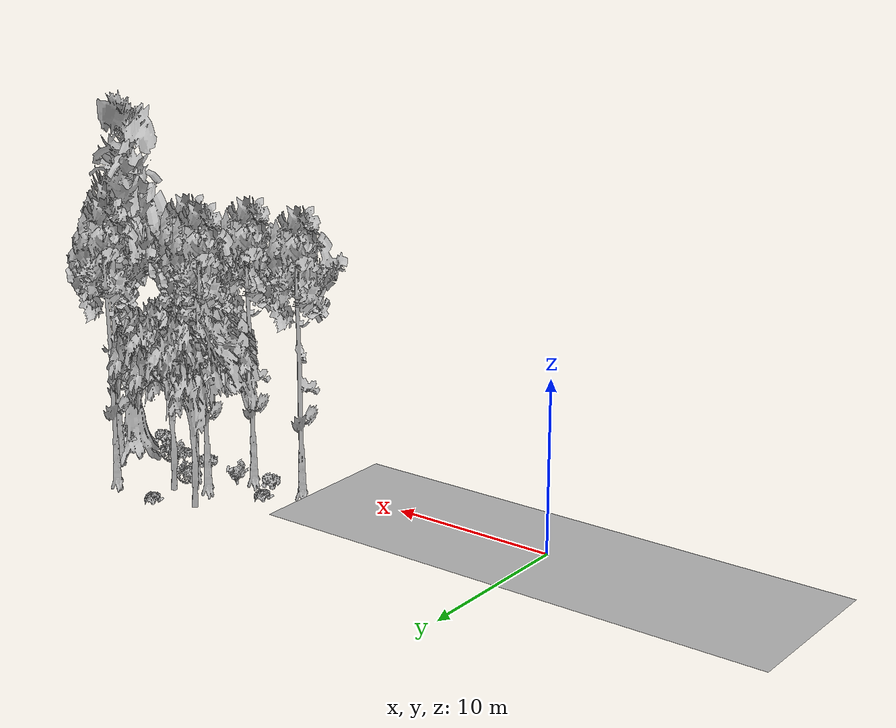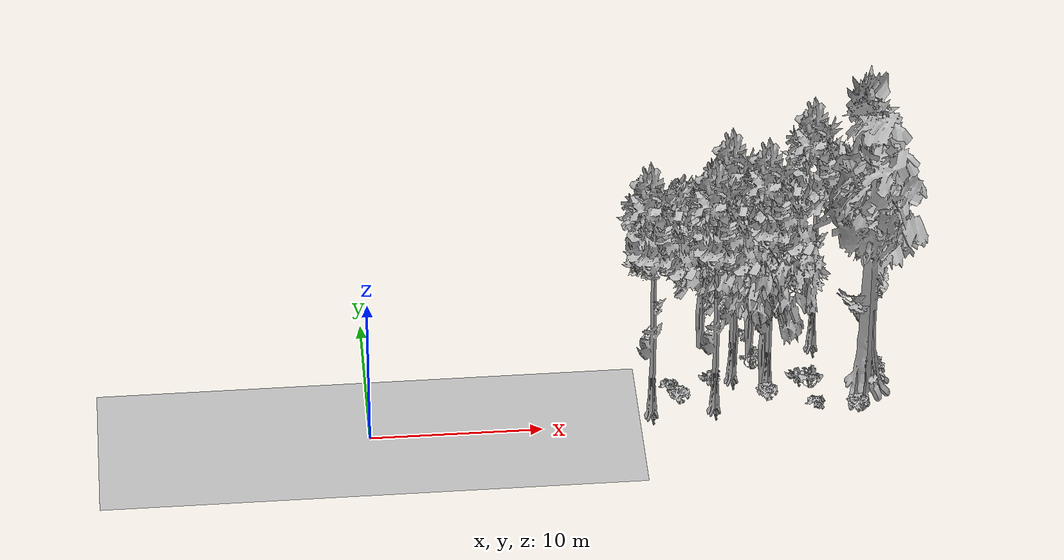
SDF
<sdf version="1.7">
 <world name="default">
  <model name="ground_plane">
   <static>1</static>
   <link name="link">
    <collision name="collision">
     <geometry><plane><normal>0 0 1</normal><size>100 100</size></plane></geometry>
     <surface><contact><ode><min_depth>0.01</min_depth><max_vel>0</max_vel></ode></contact></surface>
    </collision>
    <visual name="grass">
     <cast_shadows>0</cast_shadows>
     <geometry>
      <mesh>
       <scale>0.5814285714285714 0.18142857142857144 0.1</scale>
       <uri>file://grass_plane/meshes/grass_plane.dae</uri>
      </mesh>
     </geometry>
    </visual>
   </link>
  </model>
  <model name="Tree 25">
   <static>1</static>
   <pose>22.55077985762439 5.404610662665622 0 1.57079 -0 0</pose>
   <link name="link">
    <collision name="collision">
     <geometry><mesh><scale>3.5 5 3.5</scale><uri>model://tree_2/meshes/tree_2.obj</uri></mesh></geometry>
    </collision>
    <visual name="visual">
     <geometry><mesh><scale>3.5 5 3.5</scale><uri>model://tree_2/meshes/tree_2.obj</uri></mesh></geometry>
    </visual>
   </link>
  </model>
  <model name="Tree 134">
   <static>1</static>
   <pose>29.042151158408984 2.170299453548065 0 1.57079 -0 0</pose>
   <link name="link">
    <collision name="collision">
     <geometry><mesh><scale>3.5 5 3.5</scale><uri>model://tree_4/meshes/tree_4.obj</uri></mesh></geometry>
    </collision>
    <visual name="visual">
     <geometry><mesh><scale>3.5 5 3.5</scale><uri>model://tree_4/meshes/tree_4.obj</uri></mesh></geometry>
    </visual>
   </link>
  </model>
  <model name="Tree 139">
   <static>1</static>
   <pose>23.053420853317434 3.071436323676455 0 1.57079 -0 0</pose>
   <link name="link">
    <collision name="collision">
     <geometry><mesh><scale>3.5 5 3.5</scale><uri>model://tree_2/meshes/tree_2.obj</uri></mesh></geometry>
    </collision>
    <visual name="visual">
     <geometry><mesh><scale>3.5 5 3.5</scale><uri>model://tree_2/meshes/tree_2.obj</uri></mesh></geometry>
    </visual>
   </link>
  </model>
  <model name="Tree 196">
   <static>1</static>
   <pose>29.243679461710073 3.341687751369747 0 1.57079 -0 0</pose>
   <link name="link">
    <collision name="collision">
     <geometry><mesh><scale>3.5 5 3.5</scale><uri>model://tree_9/meshes/tree_9.obj</uri></mesh></geometry>
    </collision>
    <visual name="visual">
     <geometry><mesh><scale>3.5 5 3.5</scale><uri>model://tree_9/meshes/tree_9.obj</uri></mesh></geometry>
    </visual>
   </link>
  </model>
  <model name="Tree 197">
   <static>1</static>
   <pose>16.45932849056699 1.1250307889087736 0 1.57079 -0 0</pose>
   <link name="link">
    <collision name="collision">
     <geometry><mesh><scale>3.5 5 3.5</scale><uri>model://tree_9/meshes/tree_9.obj</uri></mesh></geometry>
    </collision>
    <visual name="visual">
     <geometry><mesh><scale>3.5 5 3.5</scale><uri>model://tree_9/meshes/tree_9.obj</uri></mesh></geometry>
    </visual>
   </link>
  </model>
  <model name="Tree 206">
   <static>1</static>
   <pose>21.550527114345527 4.646487616851701 0 1.57079 -0 0</pose>
   <link name="link">
    <collision name="collision">
     <geometry><mesh><scale>3.5 5 3.5</scale><uri>model://tree_2/meshes/tree_2.obj</uri></mesh></geometry>
    </collision>
    <visual name="visual">
     <geometry><mesh><scale>3.5 5 3.5</scale><uri>model://tree_2/meshes/tree_2.obj</uri></mesh></geometry>
    </visual>
   </link>
  </model>
  <model name="Tree 224">
   <static>1</static>
   <pose>20.13026242590155 1.2398484800695435 0 1.57079 -0 0</pose>
   <link name="link">
    <collision name="collision">
     <geometry><mesh><scale>3.5 5 3.5</scale><uri>model://tree_9/meshes/tree_9.obj</uri></mesh></geometry>
    </collision>
    <visual name="visual">
     <geometry><mesh><scale>3.5 5 3.5</scale><uri>model://tree_9/meshes/tree_9.obj</uri></mesh></geometry>
    </visual>
   </link>
  </model>
  <model name="Tree 230">
   <static>1</static>
   <pose>26.452710162966667 6.327860844404736 0 1.57079 -0 0</pose>
   <link name="link">
    <collision name="collision">
     <geometry><mesh><scale>3.5 5 3.5</scale><uri>model://tree_9/meshes/tree_9.obj</uri></mesh></geometry>
    </collision>
    <visual name="visual">
     <geometry><mesh><scale>3.5 5 3.5</scale><uri>model://tree_9/meshes/tree_9.obj</uri></mesh></geometry>
    </visual>
   </link>
  </model>
  <model name="Tree 266">
   <static>1</static>
   <pose>21.431868518218863 3.8346531745085883 0 1.57079 -0 0</pose>
   <link name="link">
    <collision name="collision">
     <geometry><mesh><scale>3.5 5 3.5</scale><uri>model://tree_9/meshes/tree_9.obj</uri></mesh></geometry>
    </collision>
    <visual name="visual">
     <geometry><mesh><scale>3.5 5 3.5</scale><uri>model://tree_9/meshes/tree_9.obj</uri></mesh></geometry>
    </visual>
   </link>
  </model>
  <model name="Tree 352">
   <static>1</static>
   <pose>23.393078878487785 2.79384476644859 0 1.57079 -0 0</pose>
   <link name="link">
    <collision name="collision">
     <geometry><mesh><scale>3.5 5 3.5</scale><uri>model://tree_9/meshes/tree_9.obj</uri></mesh></geometry>
    </collision>
    <visual name="visual">
     <geometry><mesh><scale>3.5 5 3.5</scale><uri>model://tree_9/meshes/tree_9.obj</uri></mesh></geometry>
    </visual>
   </link>
  </model>
  <model name="Tree 395">
   <static>1</static>
   <pose>19.78388393962784 6.5391574328216535 0 1.57079 -0 0</pose>
   <link name="link">
    <collision name="collision">
     <geometry><mesh><scale>3.5 5 3.5</scale><uri>model://tree_2/meshes/tree_2.obj</uri></mesh></geometry>
    </collision>
    <visual name="visual">
     <geometry><mesh><scale>3.5 5 3.5</scale><uri>model://tree_2/meshes/tree_2.obj</uri></mesh></geometry>
    </visual>
   </link>
  </model>
  <model name="Bush 2">
   <static>1</static>
   <pose>23.343168378814113 1.8590197271873414 0 1.57079 -0 0</pose>
   <link name="link">
    <collision name="collision">
     <geometry><mesh><scale>2 2 2</scale><uri>model://bush_3/meshes/bush_3.obj</uri></mesh></geometry>
     <surface><contact><collide_without_contact>false</collide_without_contact></contact></surface>
    </collision>
    <visual name="visual">
     <geometry><mesh><scale>2 2 2</scale><uri>model://bush_3/meshes/bush_3.obj</uri></mesh></geometry>
    </visual>
   </link>
  </model>
  <model name="Bush 52">
   <static>1</static>
   <pose>17.672349184773438 3.1206983590997908 0 1.57079 -0 0</pose>
   <link name="link">
    <collision name="collision">
     <geometry><mesh><scale>2 2 2</scale><uri>model://bush_2/meshes/bush_2.obj</uri></mesh></geometry>
     <surface><contact><collide_without_contact>false</collide_without_contact></contact></surface>
    </collision>
    <visual name="visual">
     <geometry><mesh><scale>2 2 2</scale><uri>model://bush_2/meshes/bush_2.obj</uri></mesh></geometry>
    </visual>
   </link>
  </model>
  <model name="Bush 82">
   <static>1</static>
   <pose>22.72200213504442 4.372428457973214 0 1.57079 -0 0</pose>
   <link name="link">
    <collision name="collision">
     <geometry><mesh><scale>2 2 2</scale><uri>model://bush_4/meshes/bush_4.obj</uri></mesh></geometry>
     <surface><contact><collide_without_contact>false</collide_without_contact></contact></surface>
    </collision>
    <visual name="visual">
     <geometry><mesh><scale>2 2 2</scale><uri>model://bush_4/meshes/bush_4.obj</uri></mesh></geometry>
    </visual>
   </link>
  </model>
  <model name="Bush 116">
   <static>1</static>
   <pose>22.47471742264851 7.258734940844981 0 1.57079 -0 0</pose>
   <link name="link">
    <collision name="collision">
     <geometry><mesh><scale>2 2 2</scale><uri>model://bush_2/meshes/bush_2.obj</uri></mesh></geometry>
     <surface><contact><collide_without_contact>false</collide_without_contact></contact></surface>
    </collision>
    <visual name="visual">
     <geometry><mesh><scale>2 2 2</scale><uri>model://bush_2/meshes/bush_2.obj</uri></mesh></geometry>
    </visual>
   </link>
  </model>
  <model name="Bush 126">
   <static>1</static>
   <pose>28.50429083712993 0.45930788878373363 0 1.57079 -0 0</pose>
   <link name="link">
    <collision name="collision">
     <geometry><mesh><scale>2 2 2</scale><uri>model://bush_3/meshes/bush_3.obj</uri></mesh></geometry>
     <surface><contact><collide_without_contact>false</collide_without_contact></contact></surface>
    </collision>
    <visual name="visual">
     <geometry><mesh><scale>2 2 2</scale><uri>model://bush_3/meshes/bush_3.obj</uri></mesh></geometry>
    </visual>
   </link>
  </model>
  <model name="Bush 197">
   <static>1</static>
   <pose>25.90926564776744 2.424065747570708 0 1.57079 -0 0</pose>
   <link name="link">
    <collision name="collision">
     <geometry><mesh><scale>2 2 2</scale><uri>model://bush_4/meshes/bush_4.obj</uri></mesh></geometry>
     <surface><contact><collide_without_contact>false</collide_without_contact></contact></surface>
    </collision>
    <visual name="visual">
     <geometry><mesh><scale>2 2 2</scale><uri>model://bush_4/meshes/bush_4.obj</uri></mesh></geometry>
    </visual>
   </link>
  </model>
  <model name="Bush 216">
   <static>1</static>
   <pose>26.05502506001146 0.9625302000832043 0 1.57079 -0 0</pose>
   <link name="link">
    <collision name="collision">
     <geometry><mesh><scale>2 2 2</scale><uri>model://bush_2/meshes/bush_2.obj</uri></mesh></geometry>
     <surface><contact><collide_without_contact>false</collide_without_contact></contact></surface>
    </collision>
    <visual name="visual">
     <geometry><mesh><scale>2 2 2</scale><uri>model://bush_2/meshes/bush_2.obj</uri></mesh></geometry>
    </visual>
   </link>
  </model>
  <model name="Bush 220">
   <static>1</static>
   <pose>18.209561200997058 1.9736351530220446 0 1.57079 -0 0</pose>
   <link name="link">
    <collision name="collision">
     <geometry><mesh><scale>2 2 2</scale><uri>model://bush_3/meshes/bush_3.obj</uri></mesh></geometry>
     <surface><contact><collide_without_contact>false</collide_without_contact></contact></surface>
    </collision>
    <visual name="visual">
     <geometry><mesh><scale>2 2 2</scale><uri>model://bush_3/meshes/bush_3.obj</uri></mesh></geometry>
    </visual>
   </link>
  </model>
  <model name="Bush 283">
   <static>1</static>
   <pose>25.240980723742382 2.525208499612976 0 1.57079 -0 0</pose>
   <link name="link">
    <collision name="collision">
     <geometry><mesh><scale>2 2 2</scale><uri>model://bush_0/meshes/bush_0.obj</uri></mesh></geometry>
     <surface><contact><collide_without_contact>false</collide_without_contact></contact></surface>
    </collision>
    <visual name="visual">
     <geometry><mesh><scale>2 2 2</scale><uri>model://bush_0/meshes/bush_0.obj</uri></mesh></geometry>
    </visual>
   </link>
  </model>
  <model name="Bush 319">
   <static>1</static>
   <pose>29.485865190557462 2.2450858340966455 0 1.57079 -0 0</pose>
   <link name="link">
    <collision name="collision">
     <geometry><mesh><scale>2 2 2</scale><uri>model://bush_1/meshes/bush_1.obj</uri></mesh></geometry>
     <surface><contact><collide_without_contact>false</collide_without_contact></contact></surface>
    </collision>
    <visual name="visual">
     <geometry><mesh><scale>2 2 2</scale><uri>model://bush_1/meshes/bush_1.obj</uri></mesh></geometry>
    </visual>
   </link>
  </model>
  <model name="Bush 333">
   <static>1</static>
   <pose>20.1583240948312 2.7017350895924146 0 1.57079 -0 0</pose>
   <link name="link">
    <collision name="collision">
     <geometry><mesh><scale>2 2 2</scale><uri>model://bush_0/meshes/bush_0.obj</uri></mesh></geometry>
     <surface><contact><collide_without_contact>false</collide_without_contact></contact></surface>
    </collision>
    <visual name="visual">
     <geometry><mesh><scale>2 2 2</scale><uri>model://bush_0/meshes/bush_0.obj</uri></mesh></geometry>
    </visual>
   </link>
  </model>
 </world>
</sdf>
